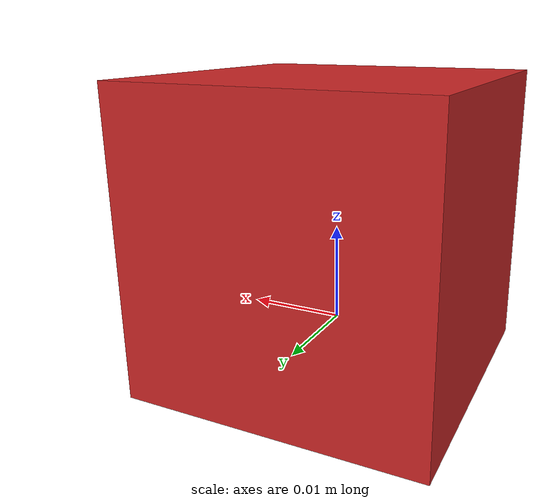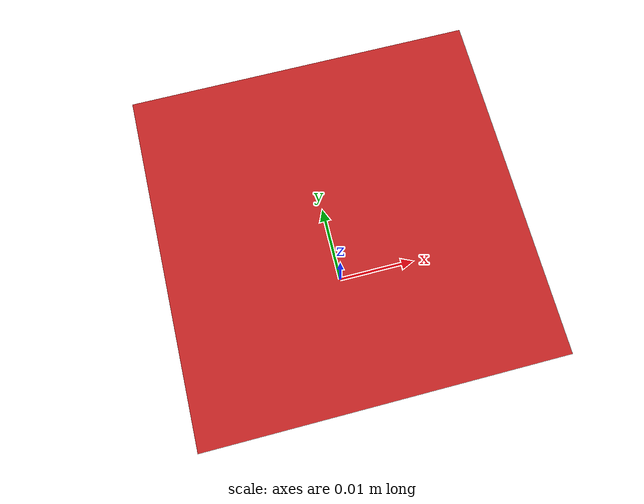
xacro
<?xml version="1.0"?>
<robot xmlns:xacro="http://wiki.ros.org/xacro" name="cube">

  <link name="base_link">
  </link>

  <joint name="cube_base_joint" type="fixed">
    <parent link="base_link"/>
    <child link="cube_link"/>
    <axis xyz="1 1 1" />
    <dynamics damping="0.5" friction="0.5"/>
    <origin xyz="0 0 0.01" rpy="0 0 0"/>
  </joint>

  <link name="cube_link">
    <collision>
      <origin xyz="0 0 0" rpy="0 0 0"/>
      <geometry>
	<box size="0.051 0.031 0.041"/>
      </geometry>
	<mu value="0.5"/>
    </collision>

    <visual>
      <origin xyz="0 0 0" rpy="0 0 0"/>
      <geometry>
	<box size="0.031 0.031 0.031"/>
      </geometry>
    </visual>

    <inertial>
      <origin xyz="0 0 0" rpy="0 0 0"/>
      <mass value="0.01"/>
      <inertia ixx="0.001" ixy="0.0" ixz="0.0"
		iyy="0.001" iyz="0.0"
		izz="0.001"/>
    </inertial>
    <self_collide>1</self_collide>
  </link>

  <gazebo reference="cube_link">
    <material>Gazebo/Red</material>
  </gazebo>

</robot>
